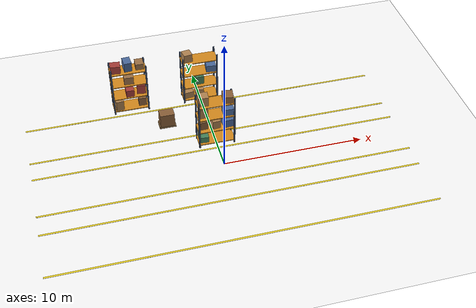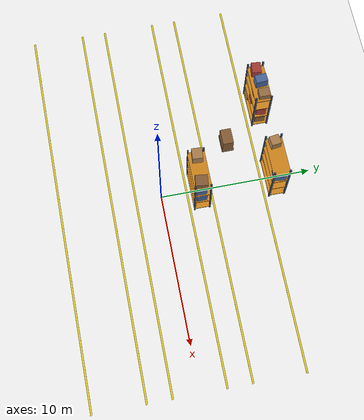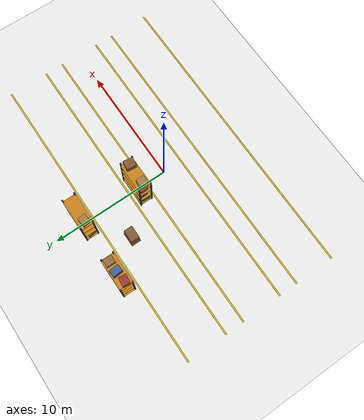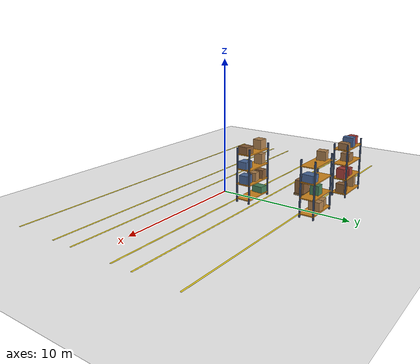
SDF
<sdf version="1.9">
 <world name="warehouse">
  <model name="ground_plane">
   <static>true</static>
   <link name="link">
    <collision name="collision">
     <geometry><plane><normal>0 0 1</normal><size>200 200</size></plane></geometry>
     <surface><friction><ode><mu>1.0</mu><mu2>1.0</mu2></ode></friction></surface>
    </collision>
    <visual name="visual">
     <geometry><plane><normal>0 0 1</normal><size>200 200</size></plane></geometry>
     <material>
      <ambient>0.5 0.5 0.5 1</ambient>
      <diffuse>1 1 1 1</diffuse>
      <pbr>
       <metal>
        <albedo_map>model://surfaces/materials/textures/floor.png</albedo_map>
        <metalness>0</metalness>
        <roughness>0.9</roughness>
       </metal>
      </pbr>
     </material>
    </visual>
   </link>
  </model>
  <model name="floor_markings">
   <static>true</static>
   <link name="link">
    <visual name="aisle_line_0_-1_v">
     <pose>0 -6.7 0.005 0 0 0</pose>
     <geometry><box><size>26 0.12 0.01</size></box></geometry>
     <material><ambient>0.475 0.425 0.075 1</ambient><diffuse>0.95 0.85 0.15 1</diffuse></material>
    </visual>
    <visual name="aisle_line_0_1_v">
     <pose>0 -3.3 0.005 0 0 0</pose>
     <geometry><box><size>26 0.12 0.01</size></box></geometry>
     <material><ambient>0.475 0.425 0.075 1</ambient><diffuse>0.95 0.85 0.15 1</diffuse></material>
    </visual>
    <visual name="aisle_line_1_-1_v">
     <pose>0 -1.7 0.005 0 0 0</pose>
     <geometry><box><size>26 0.12 0.01</size></box></geometry>
     <material><ambient>0.475 0.425 0.075 1</ambient><diffuse>0.95 0.85 0.15 1</diffuse></material>
    </visual>
    <visual name="aisle_line_1_1_v">
     <pose>0 1.7 0.005 0 0 0</pose>
     <geometry><box><size>26 0.12 0.01</size></box></geometry>
     <material><ambient>0.475 0.425 0.075 1</ambient><diffuse>0.95 0.85 0.15 1</diffuse></material>
    </visual>
    <visual name="aisle_line_2_-1_v">
     <pose>0 3.3 0.005 0 0 0</pose>
     <geometry><box><size>26 0.12 0.01</size></box></geometry>
     <material><ambient>0.475 0.425 0.075 1</ambient><diffuse>0.95 0.85 0.15 1</diffuse></material>
    </visual>
    <visual name="aisle_line_2_1_v">
     <pose>0 6.7 0.005 0 0 0</pose>
     <geometry><box><size>26 0.12 0.01</size></box></geometry>
     <material><ambient>0.475 0.425 0.075 1</ambient><diffuse>0.95 0.85 0.15 1</diffuse></material>
    </visual>
   </link>
  </model>
  <model name="rack_2_2">
   <static>true</static>
   <pose>0 2.5 0 0 0 0</pose>
   <link name="link">
    <visual name="upright_0_v">
     <pose>-1.25 -0.5 2 0 0 0</pose>
     <geometry><box><size>0.1 0.1 4</size></box></geometry>
     <material><ambient>0.125 0.16 0.225 1</ambient><diffuse>0.25 0.32 0.45 1</diffuse></material>
    </visual>
    <collision name="upright_0_c">
     <pose>-1.25 -0.5 2 0 0 0</pose>
     <geometry><box><size>0.1 0.1 4</size></box></geometry>
    </collision>
    <visual name="upright_1_v">
     <pose>-1.25 0.5 2 0 0 0</pose>
     <geometry><box><size>0.1 0.1 4</size></box></geometry>
     <material><ambient>0.125 0.16 0.225 1</ambient><diffuse>0.25 0.32 0.45 1</diffuse></material>
    </visual>
    <collision name="upright_1_c">
     <pose>-1.25 0.5 2 0 0 0</pose>
     <geometry><box><size>0.1 0.1 4</size></box></geometry>
    </collision>
    <visual name="upright_2_v">
     <pose>1.25 -0.5 2 0 0 0</pose>
     <geometry><box><size>0.1 0.1 4</size></box></geometry>
     <material><ambient>0.125 0.16 0.225 1</ambient><diffuse>0.25 0.32 0.45 1</diffuse></material>
    </visual>
    <collision name="upright_2_c">
     <pose>1.25 -0.5 2 0 0 0</pose>
     <geometry><box><size>0.1 0.1 4</size></box></geometry>
    </collision>
    <visual name="upright_3_v">
     <pose>1.25 0.5 2 0 0 0</pose>
     <geometry><box><size>0.1 0.1 4</size></box></geometry>
     <material><ambient>0.125 0.16 0.225 1</ambient><diffuse>0.25 0.32 0.45 1</diffuse></material>
    </visual>
    <collision name="upright_3_c">
     <pose>1.25 0.5 2 0 0 0</pose>
     <geometry><box><size>0.1 0.1 4</size></box></geometry>
    </collision>
    <visual name="deck_0_v">
     <pose>0 0 0.25 0 0 0</pose>
     <geometry><box><size>2.6 1.1 0.07</size></box></geometry>
     <material><ambient>0.425 0.275 0.06 1</ambient><diffuse>0.85 0.55 0.12 1</diffuse></material>
    </visual>
    <collision name="deck_0_c">
     <pose>0 0 0.25 0 0 0</pose>
     <geometry><box><size>2.6 1.1 0.07</size></box></geometry>
    </collision>
    <visual name="cargo_0_0_v">
     <pose>-0.8667 0.043 0.5166 0 0 -0.07446</pose>
     <geometry><box><size>0.6639 0.8406 0.4632</size></box></geometry>
     <material><ambient>0.14 0.26 0.18 1</ambient><diffuse>0.28 0.52 0.36 1</diffuse></material>
    </visual>
    <collision name="cargo_0_0_c">
     <pose>-0.8667 0.043 0.5166 0 0 -0.07446</pose>
     <geometry><box><size>0.6639 0.8406 0.4632</size></box></geometry>
    </collision>
    <visual name="deck_1_v">
     <pose>0 0 1.35 0 0 0</pose>
     <geometry><box><size>2.6 1.1 0.07</size></box></geometry>
     <material><ambient>0.425 0.275 0.06 1</ambient><diffuse>0.85 0.55 0.12 1</diffuse></material>
    </visual>
    <collision name="deck_1_c">
     <pose>0 0 1.35 0 0 0</pose>
     <geometry><box><size>2.6 1.1 0.07</size></box></geometry>
    </collision>
    <visual name="cargo_1_1_v">
     <pose>0 0.01658 1.702 0 0 0.08715</pose>
     <geometry><box><size>0.5641 0.697 0.6336</size></box></geometry>
     <material><ambient>0.35 0.26 0.16 1</ambient><diffuse>0.7 0.52 0.32 1</diffuse></material>
    </visual>
    <collision name="cargo_1_1_c">
     <pose>0 0.01658 1.702 0 0 0.08715</pose>
     <geometry><box><size>0.5641 0.697 0.6336</size></box></geometry>
    </collision>
    <visual name="cargo_1_0_v">
     <pose>-0.8667 0.09927 1.704 0 0 0.04337</pose>
     <geometry><box><size>0.5502 0.6697 0.6381</size></box></geometry>
     <material><ambient>0.275 0.19 0.11 1</ambient><diffuse>0.55 0.38 0.22 1</diffuse></material>
    </visual>
    <collision name="cargo_1_0_c">
     <pose>-0.8667 0.09927 1.704 0 0 0.04337</pose>
     <geometry><box><size>0.5502 0.6697 0.6381</size></box></geometry>
    </collision>
    <visual name="cargo_1_2_v">
     <pose>0.8667 -0.05305 1.693 0 0 0.0614</pose>
     <geometry><box><size>0.7268 0.6618 0.6164</size></box></geometry>
     <material><ambient>0.15 0.21 0.31 1</ambient><diffuse>0.3 0.42 0.62 1</diffuse></material>
    </visual>
    <collision name="cargo_1_2_c">
     <pose>0.8667 -0.05305 1.693 0 0 0.0614</pose>
     <geometry><box><size>0.7268 0.6618 0.6164</size></box></geometry>
    </collision>
    <visual name="deck_2_v">
     <pose>0 0 2.45 0 0 0</pose>
     <geometry><box><size>2.6 1.1 0.07</size></box></geometry>
     <material><ambient>0.425 0.275 0.06 1</ambient><diffuse>0.85 0.55 0.12 1</diffuse></material>
    </visual>
    <collision name="deck_2_c">
     <pose>0 0 2.45 0 0 0</pose>
     <geometry><box><size>2.6 1.1 0.07</size></box></geometry>
    </collision>
    <visual name="cargo_2_0_v">
     <pose>-0.8667 0.02943 2.865 0 0 0.05021</pose>
     <geometry><box><size>0.5888 0.6203 0.7597</size></box></geometry>
     <material><ambient>0.35 0.26 0.16 1</ambient><diffuse>0.7 0.52 0.32 1</diffuse></material>
    </visual>
    <collision name="cargo_2_0_c">
     <pose>-0.8667 0.02943 2.865 0 0 0.05021</pose>
     <geometry><box><size>0.5888 0.6203 0.7597</size></box></geometry>
    </collision>
    <visual name="cargo_2_2_v">
     <pose>0.8667 -0.09318 2.75 0 0 -0.0413</pose>
     <geometry><box><size>0.735 0.6845 0.5294</size></box></geometry>
     <material><ambient>0.15 0.21 0.31 1</ambient><diffuse>0.3 0.42 0.62 1</diffuse></material>
    </visual>
    <collision name="cargo_2_2_c">
     <pose>0.8667 -0.09318 2.75 0 0 -0.0413</pose>
     <geometry><box><size>0.735 0.6845 0.5294</size></box></geometry>
    </collision>
    <visual name="deck_3_v">
     <pose>0 0 3.55 0 0 0</pose>
     <geometry><box><size>2.6 1.1 0.07</size></box></geometry>
     <material><ambient>0.425 0.275 0.06 1</ambient><diffuse>0.85 0.55 0.12 1</diffuse></material>
    </visual>
    <collision name="deck_3_c">
     <pose>0 0 3.55 0 0 0</pose>
     <geometry><box><size>2.6 1.1 0.07</size></box></geometry>
    </collision>
    <visual name="cargo_3_0_v">
     <pose>-0.8667 0.0009757 3.939 0 0 -0.05649</pose>
     <geometry><box><size>0.7094 0.6513 0.7087</size></box></geometry>
     <material><ambient>0.35 0.26 0.16 1</ambient><diffuse>0.7 0.52 0.32 1</diffuse></material>
    </visual>
    <collision name="cargo_3_0_c">
     <pose>-0.8667 0.0009757 3.939 0 0 -0.05649</pose>
     <geometry><box><size>0.7094 0.6513 0.7087</size></box></geometry>
    </collision>
    <visual name="cargo_3_2_v">
     <pose>0.8667 -0.05571 3.85 0 0 -0.1173</pose>
     <geometry><box><size>0.714 0.7901 0.5308</size></box></geometry>
     <material><ambient>0.275 0.19 0.11 1</ambient><diffuse>0.55 0.38 0.22 1</diffuse></material>
    </visual>
    <collision name="cargo_3_2_c">
     <pose>0.8667 -0.05571 3.85 0 0 -0.1173</pose>
     <geometry><box><size>0.714 0.7901 0.5308</size></box></geometry>
    </collision>
   </link>
  </model>
  <model name="rack_3_1">
   <static>true</static>
   <pose>-5.2 7.5 0 0 0 0</pose>
   <link name="link">
    <visual name="upright_0_v">
     <pose>-1.25 -0.5 2 0 0 0</pose>
     <geometry><box><size>0.1 0.1 4</size></box></geometry>
     <material><ambient>0.125 0.16 0.225 1</ambient><diffuse>0.25 0.32 0.45 1</diffuse></material>
    </visual>
    <collision name="upright_0_c">
     <pose>-1.25 -0.5 2 0 0 0</pose>
     <geometry><box><size>0.1 0.1 4</size></box></geometry>
    </collision>
    <visual name="upright_1_v">
     <pose>-1.25 0.5 2 0 0 0</pose>
     <geometry><box><size>0.1 0.1 4</size></box></geometry>
     <material><ambient>0.125 0.16 0.225 1</ambient><diffuse>0.25 0.32 0.45 1</diffuse></material>
    </visual>
    <collision name="upright_1_c">
     <pose>-1.25 0.5 2 0 0 0</pose>
     <geometry><box><size>0.1 0.1 4</size></box></geometry>
    </collision>
    <visual name="upright_2_v">
     <pose>1.25 -0.5 2 0 0 0</pose>
     <geometry><box><size>0.1 0.1 4</size></box></geometry>
     <material><ambient>0.125 0.16 0.225 1</ambient><diffuse>0.25 0.32 0.45 1</diffuse></material>
    </visual>
    <collision name="upright_2_c">
     <pose>1.25 -0.5 2 0 0 0</pose>
     <geometry><box><size>0.1 0.1 4</size></box></geometry>
    </collision>
    <visual name="upright_3_v">
     <pose>1.25 0.5 2 0 0 0</pose>
     <geometry><box><size>0.1 0.1 4</size></box></geometry>
     <material><ambient>0.125 0.16 0.225 1</ambient><diffuse>0.25 0.32 0.45 1</diffuse></material>
    </visual>
    <collision name="upright_3_c">
     <pose>1.25 0.5 2 0 0 0</pose>
     <geometry><box><size>0.1 0.1 4</size></box></geometry>
    </collision>
    <visual name="deck_0_v">
     <pose>0 0 0.25 0 0 0</pose>
     <geometry><box><size>2.6 1.1 0.07</size></box></geometry>
     <material><ambient>0.425 0.275 0.06 1</ambient><diffuse>0.85 0.55 0.12 1</diffuse></material>
    </visual>
    <collision name="deck_0_c">
     <pose>0 0 0.25 0 0 0</pose>
     <geometry><box><size>2.6 1.1 0.07</size></box></geometry>
    </collision>
    <visual name="cargo_0_2_v">
     <pose>0.8667 0.02399 0.6143 0 0 -0.048</pose>
     <geometry><box><size>0.5712 0.6544 0.6587</size></box></geometry>
     <material><ambient>0.275 0.19 0.11 1</ambient><diffuse>0.55 0.38 0.22 1</diffuse></material>
    </visual>
    <collision name="cargo_0_2_c">
     <pose>0.8667 0.02399 0.6143 0 0 -0.048</pose>
     <geometry><box><size>0.5712 0.6544 0.6587</size></box></geometry>
    </collision>
    <visual name="cargo_0_0_v">
     <pose>-0.8667 -0.09235 0.685 0 0 0.09442</pose>
     <geometry><box><size>0.5588 0.7831 0.8</size></box></geometry>
     <material><ambient>0.35 0.26 0.16 1</ambient><diffuse>0.7 0.52 0.32 1</diffuse></material>
    </visual>
    <collision name="cargo_0_0_c">
     <pose>-0.8667 -0.09235 0.685 0 0 0.09442</pose>
     <geometry><box><size>0.5588 0.7831 0.8</size></box></geometry>
    </collision>
    <visual name="deck_1_v">
     <pose>0 0 1.35 0 0 0</pose>
     <geometry><box><size>2.6 1.1 0.07</size></box></geometry>
     <material><ambient>0.425 0.275 0.06 1</ambient><diffuse>0.85 0.55 0.12 1</diffuse></material>
    </visual>
    <collision name="deck_1_c">
     <pose>0 0 1.35 0 0 0</pose>
     <geometry><box><size>2.6 1.1 0.07</size></box></geometry>
    </collision>
    <visual name="cargo_1_1_v">
     <pose>0 -0.05932 1.665 0 0 -0.004948</pose>
     <geometry><box><size>0.587 0.7988 0.5593</size></box></geometry>
     <material><ambient>0.33 0.12 0.11 1</ambient><diffuse>0.66 0.24 0.22 1</diffuse></material>
    </visual>
    <collision name="cargo_1_1_c">
     <pose>0 -0.05932 1.665 0 0 -0.004948</pose>
     <geometry><box><size>0.587 0.7988 0.5593</size></box></geometry>
    </collision>
    <visual name="cargo_1_2_v">
     <pose>0.8667 0.03281 1.749 0 0 -0.1227</pose>
     <geometry><box><size>0.6316 0.6386 0.7285</size></box></geometry>
     <material><ambient>0.33 0.12 0.11 1</ambient><diffuse>0.66 0.24 0.22 1</diffuse></material>
    </visual>
    <collision name="cargo_1_2_c">
     <pose>0.8667 0.03281 1.749 0 0 -0.1227</pose>
     <geometry><box><size>0.6316 0.6386 0.7285</size></box></geometry>
    </collision>
    <visual name="deck_2_v">
     <pose>0 0 2.45 0 0 0</pose>
     <geometry><box><size>2.6 1.1 0.07</size></box></geometry>
     <material><ambient>0.425 0.275 0.06 1</ambient><diffuse>0.85 0.55 0.12 1</diffuse></material>
    </visual>
    <collision name="deck_2_c">
     <pose>0 0 2.45 0 0 0</pose>
     <geometry><box><size>2.6 1.1 0.07</size></box></geometry>
    </collision>
    <visual name="cargo_2_1_v">
     <pose>0 -0.04334 2.782 0 0 -0.05629</pose>
     <geometry><box><size>0.6891 0.6769 0.5934</size></box></geometry>
     <material><ambient>0.31 0.225 0.14 1</ambient><diffuse>0.62 0.45 0.28 1</diffuse></material>
    </visual>
    <collision name="cargo_2_1_c">
     <pose>0 -0.04334 2.782 0 0 -0.05629</pose>
     <geometry><box><size>0.6891 0.6769 0.5934</size></box></geometry>
    </collision>
    <visual name="deck_3_v">
     <pose>0 0 3.55 0 0 0</pose>
     <geometry><box><size>2.6 1.1 0.07</size></box></geometry>
     <material><ambient>0.425 0.275 0.06 1</ambient><diffuse>0.85 0.55 0.12 1</diffuse></material>
    </visual>
    <collision name="deck_3_c">
     <pose>0 0 3.55 0 0 0</pose>
     <geometry><box><size>2.6 1.1 0.07</size></box></geometry>
    </collision>
    <visual name="cargo_3_1_v">
     <pose>0 0.06044 3.944 0 0 0.06841</pose>
     <geometry><box><size>0.5536 0.7611 0.7183</size></box></geometry>
     <material><ambient>0.15 0.21 0.31 1</ambient><diffuse>0.3 0.42 0.62 1</diffuse></material>
    </visual>
    <collision name="cargo_3_1_c">
     <pose>0 0.06044 3.944 0 0 0.06841</pose>
     <geometry><box><size>0.5536 0.7611 0.7183</size></box></geometry>
    </collision>
    <visual name="cargo_3_2_v">
     <pose>0.8667 0.08033 3.811 0 0 -0.02813</pose>
     <geometry><box><size>0.5907 0.7059 0.4521</size></box></geometry>
     <material><ambient>0.31 0.225 0.14 1</ambient><diffuse>0.62 0.45 0.28 1</diffuse></material>
    </visual>
    <collision name="cargo_3_2_c">
     <pose>0.8667 0.08033 3.811 0 0 -0.02813</pose>
     <geometry><box><size>0.5907 0.7059 0.4521</size></box></geometry>
    </collision>
    <visual name="cargo_3_0_v">
     <pose>-0.8667 -0.06749 3.891 0 0 -0.1073</pose>
     <geometry><box><size>0.7266 0.6037 0.6113</size></box></geometry>
     <material><ambient>0.33 0.12 0.11 1</ambient><diffuse>0.66 0.24 0.22 1</diffuse></material>
    </visual>
    <collision name="cargo_3_0_c">
     <pose>-0.8667 -0.06749 3.891 0 0 -0.1073</pose>
     <geometry><box><size>0.7266 0.6037 0.6113</size></box></geometry>
    </collision>
   </link>
  </model>
  <model name="rack_3_2">
   <static>true</static>
   <pose>0 7.5 0 0 0 0</pose>
   <link name="link">
    <visual name="upright_0_v">
     <pose>-1.25 -0.5 2 0 0 0</pose>
     <geometry><box><size>0.1 0.1 4</size></box></geometry>
     <material><ambient>0.125 0.16 0.225 1</ambient><diffuse>0.25 0.32 0.45 1</diffuse></material>
    </visual>
    <collision name="upright_0_c">
     <pose>-1.25 -0.5 2 0 0 0</pose>
     <geometry><box><size>0.1 0.1 4</size></box></geometry>
    </collision>
    <visual name="upright_1_v">
     <pose>-1.25 0.5 2 0 0 0</pose>
     <geometry><box><size>0.1 0.1 4</size></box></geometry>
     <material><ambient>0.125 0.16 0.225 1</ambient><diffuse>0.25 0.32 0.45 1</diffuse></material>
    </visual>
    <collision name="upright_1_c">
     <pose>-1.25 0.5 2 0 0 0</pose>
     <geometry><box><size>0.1 0.1 4</size></box></geometry>
    </collision>
    <visual name="upright_2_v">
     <pose>1.25 -0.5 2 0 0 0</pose>
     <geometry><box><size>0.1 0.1 4</size></box></geometry>
     <material><ambient>0.125 0.16 0.225 1</ambient><diffuse>0.25 0.32 0.45 1</diffuse></material>
    </visual>
    <collision name="upright_2_c">
     <pose>1.25 -0.5 2 0 0 0</pose>
     <geometry><box><size>0.1 0.1 4</size></box></geometry>
    </collision>
    <visual name="upright_3_v">
     <pose>1.25 0.5 2 0 0 0</pose>
     <geometry><box><size>0.1 0.1 4</size></box></geometry>
     <material><ambient>0.125 0.16 0.225 1</ambient><diffuse>0.25 0.32 0.45 1</diffuse></material>
    </visual>
    <collision name="upright_3_c">
     <pose>1.25 0.5 2 0 0 0</pose>
     <geometry><box><size>0.1 0.1 4</size></box></geometry>
    </collision>
    <visual name="deck_0_v">
     <pose>0 0 0.25 0 0 0</pose>
     <geometry><box><size>2.6 1.1 0.07</size></box></geometry>
     <material><ambient>0.425 0.275 0.06 1</ambient><diffuse>0.85 0.55 0.12 1</diffuse></material>
    </visual>
    <collision name="deck_0_c">
     <pose>0 0 0.25 0 0 0</pose>
     <geometry><box><size>2.6 1.1 0.07</size></box></geometry>
    </collision>
    <visual name="cargo_0_0_v">
     <pose>-0.8667 -0.03041 0.54 0 0 0.1276</pose>
     <geometry><box><size>0.6974 0.6405 0.5101</size></box></geometry>
     <material><ambient>0.35 0.26 0.16 1</ambient><diffuse>0.7 0.52 0.32 1</diffuse></material>
    </visual>
    <collision name="cargo_0_0_c">
     <pose>-0.8667 -0.03041 0.54 0 0 0.1276</pose>
     <geometry><box><size>0.6974 0.6405 0.5101</size></box></geometry>
    </collision>
    <visual name="cargo_0_1_v">
     <pose>0 0.06096 0.5958 0 0 -0.05952</pose>
     <geometry><box><size>0.5718 0.8417 0.6217</size></box></geometry>
     <material><ambient>0.35 0.26 0.16 1</ambient><diffuse>0.7 0.52 0.32 1</diffuse></material>
    </visual>
    <collision name="cargo_0_1_c">
     <pose>0 0.06096 0.5958 0 0 -0.05952</pose>
     <geometry><box><size>0.5718 0.8417 0.6217</size></box></geometry>
    </collision>
    <visual name="deck_1_v">
     <pose>0 0 1.35 0 0 0</pose>
     <geometry><box><size>2.6 1.1 0.07</size></box></geometry>
     <material><ambient>0.425 0.275 0.06 1</ambient><diffuse>0.85 0.55 0.12 1</diffuse></material>
    </visual>
    <collision name="deck_1_c">
     <pose>0 0 1.35 0 0 0</pose>
     <geometry><box><size>2.6 1.1 0.07</size></box></geometry>
    </collision>
    <visual name="cargo_1_1_v">
     <pose>0 0.02727 1.716 0 0 0.0361</pose>
     <geometry><box><size>0.6129 0.6216 0.6627</size></box></geometry>
     <material><ambient>0.14 0.26 0.18 1</ambient><diffuse>0.28 0.52 0.36 1</diffuse></material>
    </visual>
    <collision name="cargo_1_1_c">
     <pose>0 0.02727 1.716 0 0 0.0361</pose>
     <geometry><box><size>0.6129 0.6216 0.6627</size></box></geometry>
    </collision>
    <visual name="deck_2_v">
     <pose>0 0 2.45 0 0 0</pose>
     <geometry><box><size>2.6 1.1 0.07</size></box></geometry>
     <material><ambient>0.425 0.275 0.06 1</ambient><diffuse>0.85 0.55 0.12 1</diffuse></material>
    </visual>
    <collision name="deck_2_c">
     <pose>0 0 2.45 0 0 0</pose>
     <geometry><box><size>2.6 1.1 0.07</size></box></geometry>
    </collision>
    <visual name="cargo_2_2_v">
     <pose>0.8667 -0.0191 2.749 0 0 -0.09511</pose>
     <geometry><box><size>0.7072 0.8116 0.5277</size></box></geometry>
     <material><ambient>0.15 0.21 0.31 1</ambient><diffuse>0.3 0.42 0.62 1</diffuse></material>
    </visual>
    <collision name="cargo_2_2_c">
     <pose>0.8667 -0.0191 2.749 0 0 -0.09511</pose>
     <geometry><box><size>0.7072 0.8116 0.5277</size></box></geometry>
    </collision>
    <visual name="deck_3_v">
     <pose>0 0 3.55 0 0 0</pose>
     <geometry><box><size>2.6 1.1 0.07</size></box></geometry>
     <material><ambient>0.425 0.275 0.06 1</ambient><diffuse>0.85 0.55 0.12 1</diffuse></material>
    </visual>
    <collision name="deck_3_c">
     <pose>0 0 3.55 0 0 0</pose>
     <geometry><box><size>2.6 1.1 0.07</size></box></geometry>
    </collision>
    <visual name="cargo_3_0_v">
     <pose>-0.8667 -0.02328 3.901 0 0 0.1412</pose>
     <geometry><box><size>0.6299 0.6308 0.6313</size></box></geometry>
     <material><ambient>0.35 0.26 0.16 1</ambient><diffuse>0.7 0.52 0.32 1</diffuse></material>
    </visual>
    <collision name="cargo_3_0_c">
     <pose>-0.8667 -0.02328 3.901 0 0 0.1412</pose>
     <geometry><box><size>0.6299 0.6308 0.6313</size></box></geometry>
    </collision>
   </link>
  </model>
  <model name="pallet_stack_1">
   <static>true</static>
   <pose>-3 5 0 0 0 0</pose>
   <link name="link">
    <visual name="pallet_v">
     <pose>0 0 0.07 0 0 0</pose>
     <geometry><box><size>1.2 0.8 0.14</size></box></geometry>
     <material><ambient>0.275 0.21 0.13 1</ambient><diffuse>0.55 0.42 0.26 1</diffuse></material>
    </visual>
    <collision name="pallet_c">
     <pose>0 0 0.07 0 0 0</pose>
     <geometry><box><size>1.2 0.8 0.14</size></box></geometry>
    </collision>
    <visual name="load_v">
     <pose>0 0 0.6368 0 0 0</pose>
     <geometry><box><size>1.05 0.72 0.9936</size></box></geometry>
     <material><ambient>0.275 0.19 0.11 1</ambient><diffuse>0.55 0.38 0.22 1</diffuse></material>
    </visual>
    <collision name="load_c">
     <pose>0 0 0.6368 0 0 0</pose>
     <geometry><box><size>1.05 0.72 0.9936</size></box></geometry>
    </collision>
   </link>
  </model>
 </world>
</sdf>
